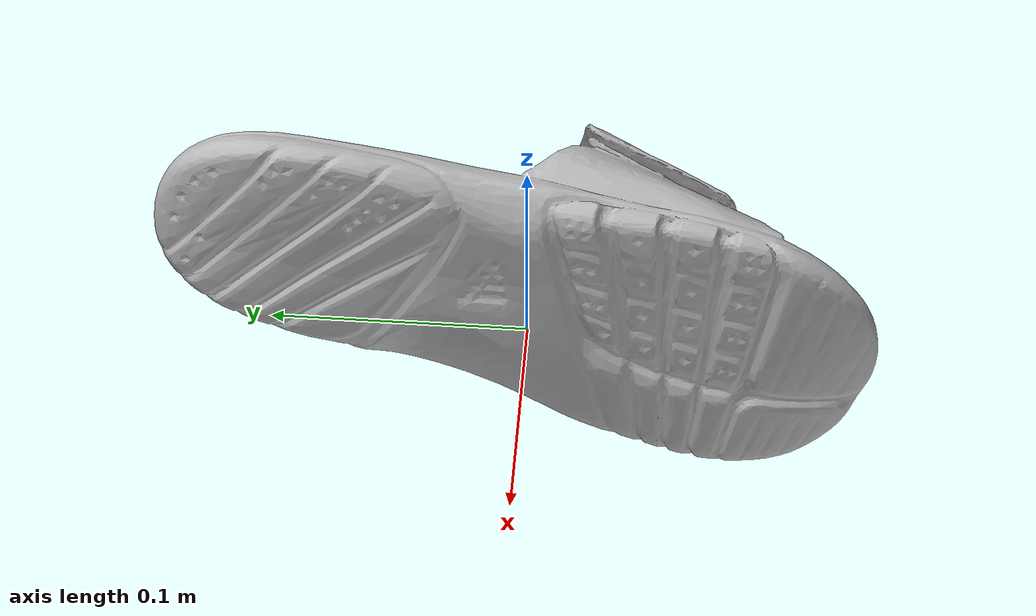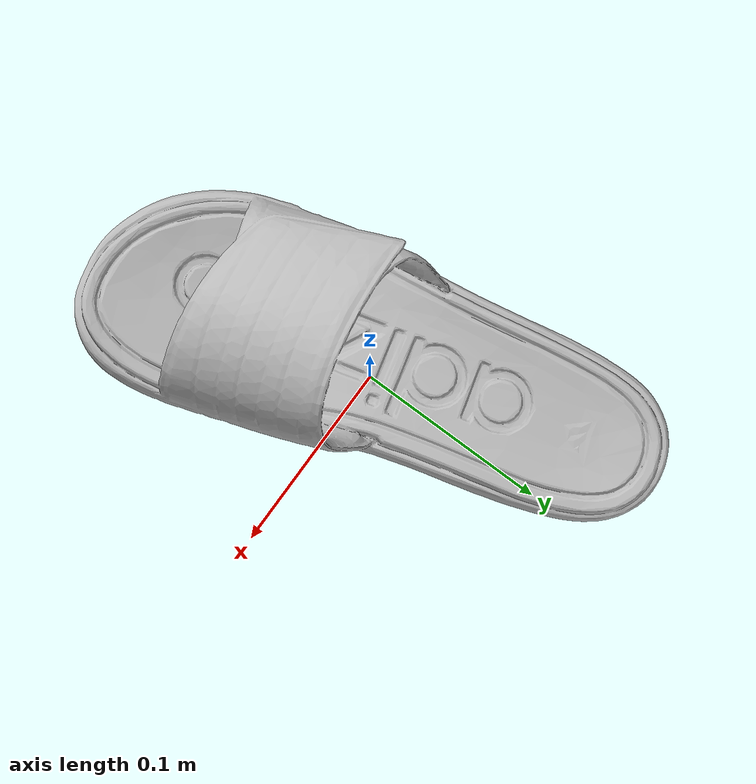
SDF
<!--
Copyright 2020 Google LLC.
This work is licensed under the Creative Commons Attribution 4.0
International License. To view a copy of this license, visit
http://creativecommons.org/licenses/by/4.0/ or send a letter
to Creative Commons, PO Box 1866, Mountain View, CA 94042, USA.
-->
<?xml version="1.0" ?>
<sdf version="1.6">
  <model name="adiZero_Slide_2_SC">
    <link name="link_0">
      <visual name="visual">
        <geometry>
          <mesh>
            <uri>meshes/model.obj</uri>
          </mesh>
        </geometry>
      </visual>
      <collision name="collision_0">
        <geometry>
          <mesh>
            <uri>meshes/model.obj</uri>
          </mesh>
        </geometry>
      </collision>
    </link>
  </model>
</sdf>
